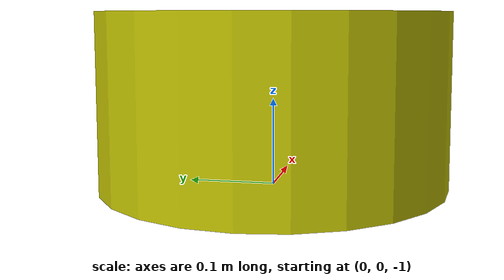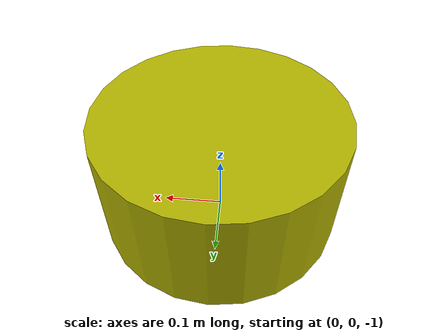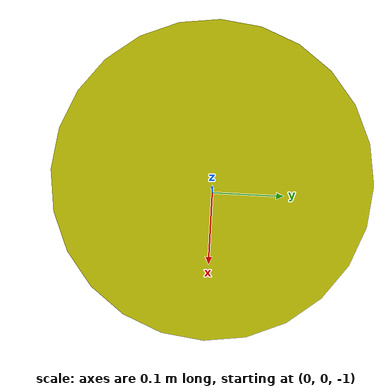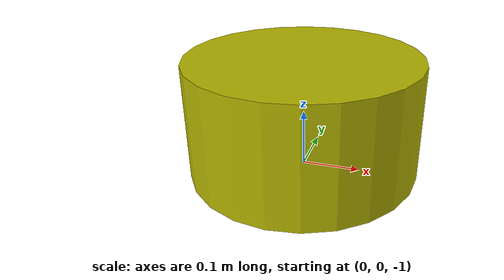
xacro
<?xml version="1.0" ?>
<robot xmlns:xacro="http://www.ros.org/wiki/xacro" name="fake_parallel_gripper">

  <!-- small standalone "fake" URDF of a 2-joints robot. This can be used
       with joint_state_publisher_gui to operate the diana_gripper as a
       parallel gripper.
  -->

  <link name="fake_parallel_gripper" >
      <inertial/>
      <!-- just a cylinder, in case you want to "visualize" this robot -->
      <visual>
        <origin xyz="0 0 0.1" />
        <material name="fake_parallel_gripper_material">
          <color rgba="0.7 0.7 0.0 1.0" />
        </material>
        <geometry>
          <cylinder radius="0.2" length="0.2" />
        </geometry>
      </visual>
  </link>

  <link name="fake_parallel_gripper/angle_link" />

  <joint name="parallel_gripper_angle" type="revolute" >
    <parent link="fake_parallel_gripper" />
    <child  link="fake_parallel_gripper/angle_link" />
    <origin xyz="0 0 0" rpy="0 0 0" />
    <axis xyz="0 0 1" />
    <limit lower="-1.2" upper="1.2" effort="1" velocity="1" />
  </joint>

  <link name="fake_parallel_gripper/proximal_tilt_link" />

  <joint name="parallel_gripper_proximal_tilt" type="revolute" >
    <parent link="fake_parallel_gripper" />
    <child  link="fake_parallel_gripper/proximal_tilt_link" />
    <origin xyz="0 0 0" rpy="0 0 0" />
    <axis xyz="0 0 1" />
    <limit lower="-1.2" upper="1.2" effort="1" velocity="1" />
  </joint>

  <link name="fake_parallel_gripper/distal_tilt_link" />

  <joint name="parallel_gripper_distal_tilt" type="revolute" >
    <parent link="fake_parallel_gripper" />
    <child  link="fake_parallel_gripper/distal_tilt_link" />
    <origin xyz="0 0 0" rpy="0 0 0" />
    <axis xyz="0 0 1" />
    <!-- extra large joint limit 2.0 for "combined" DigitSensor gripper, use 1.57 otherwise -->
    <limit lower="-2.0" upper="2.0" effort="1" velocity="1" />
  </joint>

  <link name="world" />

  <joint name="world_fake_parallel_gripper_joint" type="fixed" >
   <parent link="world" />
   <child  link="fake_parallel_gripper" />
   <origin xyz="0 0 -1" rpy="0 0 0" />
  </joint>

</robot>
